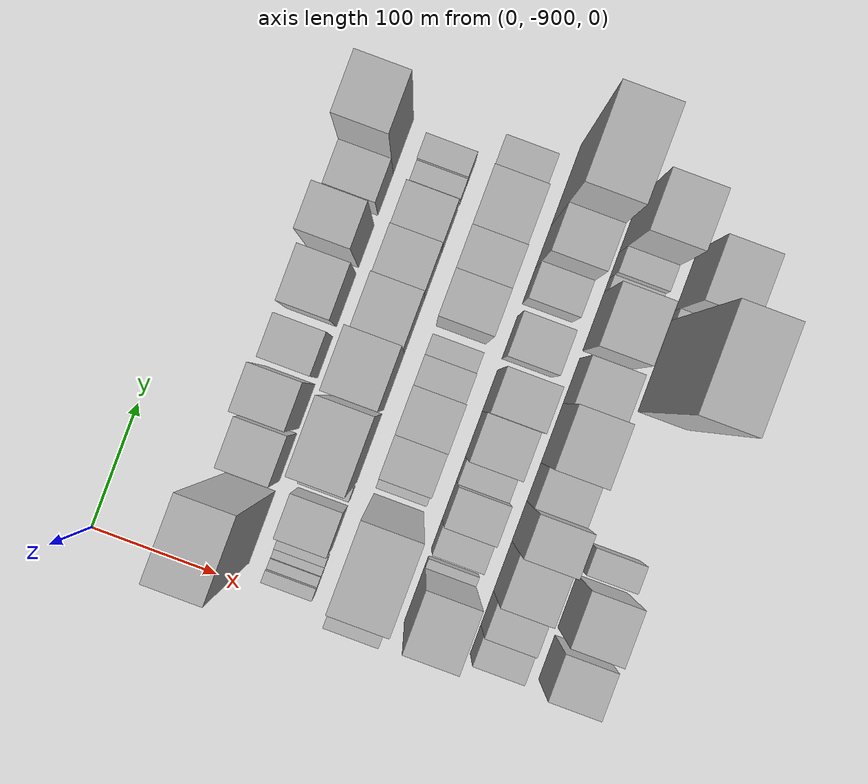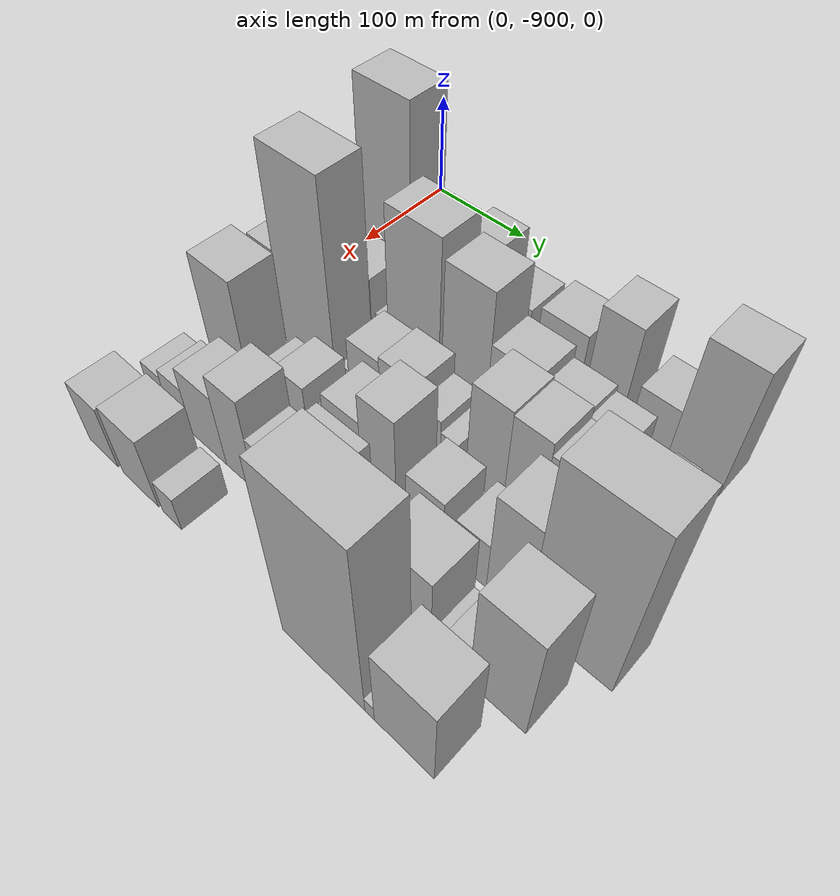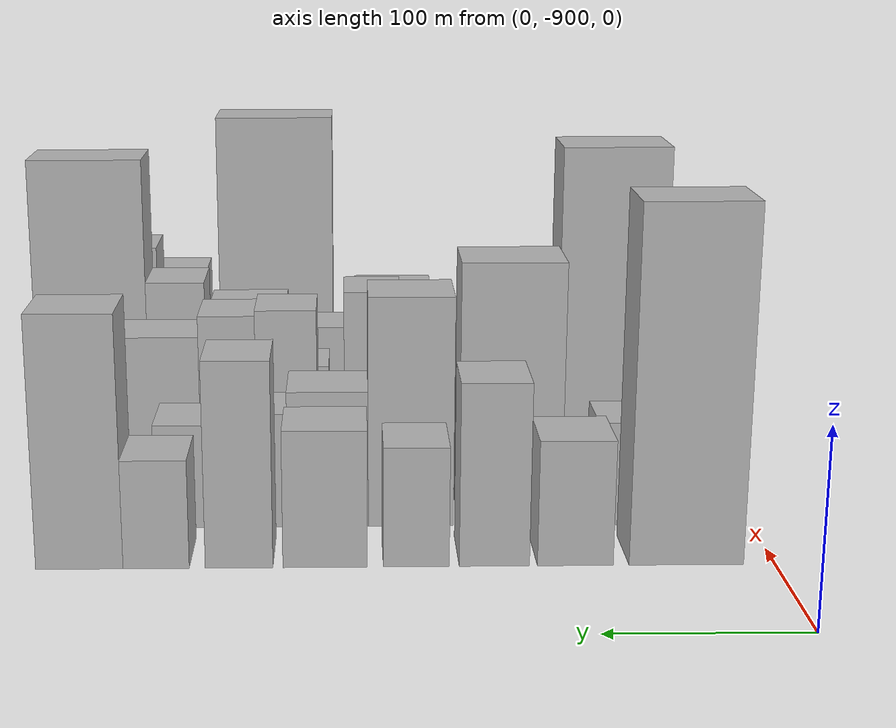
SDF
<sdf version="1.6">
 <world name="default">
  <model name="building_1">
   <static>1</static>
   <pose>100.0000 -855.0079 0 0.000000 0.000000 0.000000</pose>
   <link name="link">
    <pose>0 0 93.00 0 0 0</pose>
    <collision name="collision"><geometry><box><size>40.0000 57.9842 186.0000</size></box></geometry></collision>
    <visual name="visual">
     <cast_shadows>0</cast_shadows>
     <geometry><box><size>40.0000 57.9842 186.0000</size></box></geometry>
     <material>
      <script>
       <uri>model://HANNAS_wall/materials/scripts</uri>
       <uri>model://HANNAS_wall/materials/textures</uri>
       <name>vrc/HANNAS_wall</name>
      </script>
     </material>
    </visual>
   </link>
  </model>
  <model name="building_2">
   <static>1</static>
   <pose>100.0000 -798.8635 0 0.000000 0.000000 0.000000</pose>
   <link name="link">
    <pose>0 0 33.00 0 0 0</pose>
    <collision name="collision"><geometry><box><size>40.0000 38.3047 66.0000</size></box></geometry></collision>
    <visual name="visual">
     <cast_shadows>0</cast_shadows>
     <geometry><box><size>40.0000 38.3047 66.0000</size></box></geometry>
     <material>
      <script>
       <uri>model://HANNAS_wall/materials/scripts</uri>
       <uri>model://HANNAS_wall/materials/textures</uri>
       <name>vrc/HANNAS_wall</name>
      </script>
     </material>
    </visual>
   </link>
  </model>
  <model name="building_3">
   <static>1</static>
   <pose>100.0000 -757.9842 0 0.000000 0.000000 0.000000</pose>
   <link name="link">
    <pose>0 0 48.00 0 0 0</pose>
    <collision name="collision"><geometry><box><size>40.0000 35.4537 96.0000</size></box></geometry></collision>
    <visual name="visual">
     <cast_shadows>0</cast_shadows>
     <geometry><box><size>40.0000 35.4537 96.0000</size></box></geometry>
     <material>
      <script>
       <uri>model://HANNAS_wall/materials/scripts</uri>
       <uri>model://HANNAS_wall/materials/textures</uri>
       <name>vrc/HANNAS_wall</name>
      </script>
     </material>
    </visual>
   </link>
  </model>
  <model name="building_4">
   <static>1</static>
   <pose>100.0000 -718.6537 0 0.000000 0.000000 0.000000</pose>
   <link name="link">
    <pose>0 0 31.50 0 0 0</pose>
    <collision name="collision"><geometry><box><size>40.0000 33.2072 63.0000</size></box></geometry></collision>
    <visual name="visual">
     <cast_shadows>0</cast_shadows>
     <geometry><box><size>40.0000 33.2072 63.0000</size></box></geometry>
     <material>
      <script>
       <uri>model://HANNAS_wall/materials/scripts</uri>
       <uri>model://HANNAS_wall/materials/textures</uri>
       <name>vrc/HANNAS_wall</name>
      </script>
     </material>
    </visual>
   </link>
  </model>
  <model name="building_5">
   <static>1</static>
   <pose>100.0000 -672.7958 0 0.000000 0.000000 0.000000</pose>
   <link name="link">
    <pose>0 0 36.00 0 0 0</pose>
    <collision name="collision"><geometry><box><size>40.0000 42.5087 72.0000</size></box></geometry></collision>
    <visual name="visual">
     <cast_shadows>0</cast_shadows>
     <geometry><box><size>40.0000 42.5087 72.0000</size></box></geometry>
     <material>
      <script>
       <uri>model://HANNAS_wall/materials/scripts</uri>
       <uri>model://HANNAS_wall/materials/textures</uri>
       <name>vrc/HANNAS_wall</name>
      </script>
     </material>
    </visual>
   </link>
  </model>
  <model name="building_6">
   <static>1</static>
   <pose>100.0000 -629.5674 0 0.000000 0.000000 0.000000</pose>
   <link name="link">
    <pose>0 0 54.00 0 0 0</pose>
    <collision name="collision"><geometry><box><size>40.0000 33.9480 108.0000</size></box></geometry></collision>
    <visual name="visual">
     <cast_shadows>0</cast_shadows>
     <geometry><box><size>40.0000 33.9480 108.0000</size></box></geometry>
     <material>
      <script>
       <uri>model://HANNAS_wall/materials/scripts</uri>
       <uri>model://HANNAS_wall/materials/textures</uri>
       <name>vrc/HANNAS_wall</name>
      </script>
     </material>
    </visual>
   </link>
  </model>
  <model name="building_7">
   <static>1</static>
   <pose>100.0000 -588.0046 0 0.000000 0.000000 0.000000</pose>
   <link name="link">
    <pose>0 0 28.50 0 0 0</pose>
    <collision name="collision"><geometry><box><size>40.0000 33.1776 57.0000</size></box></geometry></collision>
    <visual name="visual">
     <cast_shadows>0</cast_shadows>
     <geometry><box><size>40.0000 33.1776 57.0000</size></box></geometry>
     <material>
      <script>
       <uri>model://HANNAS_wall/materials/scripts</uri>
       <uri>model://HANNAS_wall/materials/textures</uri>
       <name>vrc/HANNAS_wall</name>
      </script>
     </material>
    </visual>
   </link>
  </model>
  <model name="building_8">
   <static>1</static>
   <pose>100.0000 -549.5656 0 0.000000 0.000000 0.000000</pose>
   <link name="link">
    <pose>0 0 66.00 0 0 0</pose>
    <collision name="collision"><geometry><box><size>40.0000 43.7004 132.0000</size></box></geometry></collision>
    <visual name="visual">
     <cast_shadows>0</cast_shadows>
     <geometry><box><size>40.0000 43.7004 132.0000</size></box></geometry>
     <material>
      <script>
       <uri>model://HANNAS_wall/materials/scripts</uri>
       <uri>model://HANNAS_wall/materials/textures</uri>
       <name>vrc/HANNAS_wall</name>
      </script>
     </material>
    </visual>
   </link>
  </model>
  <model name="building_48">
   <static>1</static>
   <pose>155.0000 -885.1089 0 0.000000 0.000000 0.000000</pose>
   <link name="link">
    <pose>0 0 12.00 0 0 0</pose>
    <collision name="collision"><geometry><box><size>40.0000 9.7822 24.0000</size></box></geometry></collision>
    <visual name="visual">
     <cast_shadows>0</cast_shadows>
     <geometry><box><size>40.0000 9.7822 24.0000</size></box></geometry>
     <material>
      <script>
       <uri>model://HANNAS_wall/materials/scripts</uri>
       <uri>model://HANNAS_wall/materials/textures</uri>
       <name>vrc/HANNAS_wall</name>
      </script>
     </material>
    </visual>
   </link>
  </model>
  <model name="building_49">
   <static>1</static>
   <pose>155.0000 -876.0844 0 0.000000 0.000000 0.000000</pose>
   <link name="link">
    <pose>0 0 9.00 0 0 0</pose>
    <collision name="collision"><geometry><box><size>40.0000 8.2669 18.0000</size></box></geometry></collision>
    <visual name="visual">
     <cast_shadows>0</cast_shadows>
     <geometry><box><size>40.0000 8.2669 18.0000</size></box></geometry>
     <material>
      <script>
       <uri>model://HANNAS_wall/materials/scripts</uri>
       <uri>model://HANNAS_wall/materials/textures</uri>
       <name>vrc/HANNAS_wall</name>
      </script>
     </material>
    </visual>
   </link>
  </model>
  <model name="building_50">
   <static>1</static>
   <pose>155.0000 -868.2779 0 0.000000 0.000000 0.000000</pose>
   <link name="link">
    <pose>0 0 7.50 0 0 0</pose>
    <collision name="collision"><geometry><box><size>40.0000 7.3459 15.0000</size></box></geometry></collision>
    <visual name="visual">
     <cast_shadows>0</cast_shadows>
     <geometry><box><size>40.0000 7.3459 15.0000</size></box></geometry>
     <material>
      <script>
       <uri>model://HANNAS_wall/materials/scripts</uri>
       <uri>model://HANNAS_wall/materials/textures</uri>
       <name>vrc/HANNAS_wall</name>
      </script>
     </material>
    </visual>
   </link>
  </model>
  <model name="building_51">
   <static>1</static>
   <pose>155.0000 -860.5653 0 0.000000 0.000000 0.000000</pose>
   <link name="link">
    <pose>0 0 9.00 0 0 0</pose>
    <collision name="collision"><geometry><box><size>40.0000 8.0793 18.0000</size></box></geometry></collision>
    <visual name="visual">
     <cast_shadows>0</cast_shadows>
     <geometry><box><size>40.0000 8.0793 18.0000</size></box></geometry>
     <material>
      <script>
       <uri>model://HANNAS_wall/materials/scripts</uri>
       <uri>model://HANNAS_wall/materials/textures</uri>
       <name>vrc/HANNAS_wall</name>
      </script>
     </material>
    </visual>
   </link>
  </model>
  <model name="building_52">
   <static>1</static>
   <pose>155.0000 -834.4599 0 0.000000 0.000000 0.000000</pose>
   <link name="link">
    <pose>0 0 28.50 0 0 0</pose>
    <collision name="collision"><geometry><box><size>40.0000 34.1317 57.0000</size></box></geometry></collision>
    <visual name="visual">
     <cast_shadows>0</cast_shadows>
     <geometry><box><size>40.0000 34.1317 57.0000</size></box></geometry>
     <material>
      <script>
       <uri>model://HANNAS_wall/materials/scripts</uri>
       <uri>model://HANNAS_wall/materials/textures</uri>
       <name>vrc/HANNAS_wall</name>
      </script>
     </material>
    </visual>
   </link>
  </model>
  <model name="building_53">
   <static>1</static>
   <pose>155.0000 -806.9582 0 0.000000 0.000000 0.000000</pose>
   <link name="link">
    <pose>0 0 12.00 0 0 0</pose>
    <collision name="collision"><geometry><box><size>40.0000 10.8717 24.0000</size></box></geometry></collision>
    <visual name="visual">
     <cast_shadows>0</cast_shadows>
     <geometry><box><size>40.0000 10.8717 24.0000</size></box></geometry>
     <material>
      <script>
       <uri>model://HANNAS_wall/materials/scripts</uri>
       <uri>model://HANNAS_wall/materials/textures</uri>
       <name>vrc/HANNAS_wall</name>
      </script>
     </material>
    </visual>
   </link>
  </model>
  <model name="building_54">
   <static>1</static>
   <pose>155.0000 -771.0704 0 0.000000 0.000000 0.000000</pose>
   <link name="link">
    <pose>0 0 72.00 0 0 0</pose>
    <collision name="collision"><geometry><box><size>40.0000 54.9039 144.0000</size></box></geometry></collision>
    <visual name="visual">
     <cast_shadows>0</cast_shadows>
     <geometry><box><size>40.0000 54.9039 144.0000</size></box></geometry>
     <material>
      <script>
       <uri>model://HANNAS_wall/materials/scripts</uri>
       <uri>model://HANNAS_wall/materials/textures</uri>
       <name>vrc/HANNAS_wall</name>
      </script>
     </material>
    </visual>
   </link>
  </model>
  <model name="building_55">
   <static>1</static>
   <pose>155.0000 -717.8754 0 0.000000 0.000000 0.000000</pose>
   <link name="link">
    <pose>0 0 63.00 0 0 0</pose>
    <collision name="collision"><geometry><box><size>40.0000 45.4861 126.0000</size></box></geometry></collision>
    <visual name="visual">
     <cast_shadows>0</cast_shadows>
     <geometry><box><size>40.0000 45.4861 126.0000</size></box></geometry>
     <material>
      <script>
       <uri>model://HANNAS_wall/materials/scripts</uri>
       <uri>model://HANNAS_wall/materials/textures</uri>
       <name>vrc/HANNAS_wall</name>
      </script>
     </material>
    </visual>
   </link>
  </model>
  <model name="building_56">
   <static>1</static>
   <pose>155.0000 -673.6505 0 0.000000 0.000000 0.000000</pose>
   <link name="link">
    <pose>0 0 37.50 0 0 0</pose>
    <collision name="collision"><geometry><box><size>40.0000 42.9636 75.0000</size></box></geometry></collision>
    <visual name="visual">
     <cast_shadows>0</cast_shadows>
     <geometry><box><size>40.0000 42.9636 75.0000</size></box></geometry>
     <material>
      <script>
       <uri>model://HANNAS_wall/materials/scripts</uri>
       <uri>model://HANNAS_wall/materials/textures</uri>
       <name>vrc/HANNAS_wall</name>
      </script>
     </material>
    </visual>
   </link>
  </model>
  <model name="building_57">
   <static>1</static>
   <pose>155.0000 -633.5452 0 0.000000 0.000000 0.000000</pose>
   <link name="link">
    <pose>0 0 31.50 0 0 0</pose>
    <collision name="collision"><geometry><box><size>40.0000 37.2471 63.0000</size></box></geometry></collision>
    <visual name="visual">
     <cast_shadows>0</cast_shadows>
     <geometry><box><size>40.0000 37.2471 63.0000</size></box></geometry>
     <material>
      <script>
       <uri>model://HANNAS_wall/materials/scripts</uri>
       <uri>model://HANNAS_wall/materials/textures</uri>
       <name>vrc/HANNAS_wall</name>
      </script>
     </material>
    </visual>
   </link>
  </model>
  <model name="building_58">
   <static>1</static>
   <pose>155.0000 -598.1725 0 0.000000 0.000000 0.000000</pose>
   <link name="link">
    <pose>0 0 28.50 0 0 0</pose>
    <collision name="collision"><geometry><box><size>40.0000 33.4984 57.0000</size></box></geometry></collision>
    <visual name="visual">
     <cast_shadows>0</cast_shadows>
     <geometry><box><size>40.0000 33.4984 57.0000</size></box></geometry>
     <material>
      <script>
       <uri>model://HANNAS_wall/materials/scripts</uri>
       <uri>model://HANNAS_wall/materials/textures</uri>
       <name>vrc/HANNAS_wall</name>
      </script>
     </material>
    </visual>
   </link>
  </model>
  <model name="building_59">
   <static>1</static>
   <pose>155.0000 -568.5907 0 0.000000 0.000000 0.000000</pose>
   <link name="link">
    <pose>0 0 15.00 0 0 0</pose>
    <collision name="collision"><geometry><box><size>40.0000 15.6651 30.0000</size></box></geometry></collision>
    <visual name="visual">
     <cast_shadows>0</cast_shadows>
     <geometry><box><size>40.0000 15.6651 30.0000</size></box></geometry>
     <material>
      <script>
       <uri>model://HANNAS_wall/materials/scripts</uri>
       <uri>model://HANNAS_wall/materials/textures</uri>
       <name>vrc/HANNAS_wall</name>
      </script>
     </material>
    </visual>
   </link>
  </model>
  <model name="building_60">
   <static>1</static>
   <pose>155.0000 -550.9416 0 0.000000 0.000000 0.000000</pose>
   <link name="link">
    <pose>0 0 18.00 0 0 0</pose>
    <collision name="collision"><geometry><box><size>40.0000 19.6332 36.0000</size></box></geometry></collision>
    <visual name="visual">
     <cast_shadows>0</cast_shadows>
     <geometry><box><size>40.0000 19.6332 36.0000</size></box></geometry>
     <material>
      <script>
       <uri>model://HANNAS_wall/materials/scripts</uri>
       <uri>model://HANNAS_wall/materials/textures</uri>
       <name>vrc/HANNAS_wall</name>
      </script>
     </material>
    </visual>
   </link>
  </model>
  <model name="building_99">
   <static>1</static>
   <pose>210.0000 -875.5840 0 0.000000 0.000000 0.000000</pose>
   <link name="link">
    <pose>0 0 48.00 0 0 0</pose>
    <collision name="collision"><geometry><box><size>40.0000 28.8320 96.0000</size></box></geometry></collision>
    <visual name="visual">
     <cast_shadows>0</cast_shadows>
     <geometry><box><size>40.0000 28.8320 96.0000</size></box></geometry>
     <material>
      <script>
       <uri>model://HANNAS_wall/materials/scripts</uri>
       <uri>model://HANNAS_wall/materials/textures</uri>
       <name>vrc/HANNAS_wall</name>
      </script>
     </material>
    </visual>
   </link>
  </model>
  <model name="building_100">
   <static>1</static>
   <pose>210.0000 -831.4779 0 0.000000 0.000000 0.000000</pose>
   <link name="link">
    <pose>0 0 97.50 0 0 0</pose>
    <collision name="collision"><geometry><box><size>40.0000 59.3801 195.0000</size></box></geometry></collision>
    <visual name="visual">
     <cast_shadows>0</cast_shadows>
     <geometry><box><size>40.0000 59.3801 195.0000</size></box></geometry>
     <material>
      <script>
       <uri>model://HANNAS_wall/materials/scripts</uri>
       <uri>model://HANNAS_wall/materials/textures</uri>
       <name>vrc/HANNAS_wall</name>
      </script>
     </material>
    </visual>
   </link>
  </model>
  <model name="building_101">
   <static>1</static>
   <pose>210.0000 -790.9703 0 0.000000 0.000000 0.000000</pose>
   <link name="link">
    <pose>0 0 10.50 0 0 0</pose>
    <collision name="collision"><geometry><box><size>40.0000 9.6350 21.0000</size></box></geometry></collision>
    <visual name="visual">
     <cast_shadows>0</cast_shadows>
     <geometry><box><size>40.0000 9.6350 21.0000</size></box></geometry>
     <material>
      <script>
       <uri>model://HANNAS_wall/materials/scripts</uri>
       <uri>model://HANNAS_wall/materials/textures</uri>
       <name>vrc/HANNAS_wall</name>
      </script>
     </material>
    </visual>
   </link>
  </model>
  <model name="building_102">
   <static>1</static>
   <pose>210.0000 -769.4218 0 0.000000 0.000000 0.000000</pose>
   <link name="link">
    <pose>0 0 28.50 0 0 0</pose>
    <collision name="collision"><geometry><box><size>40.0000 33.4621 57.0000</size></box></geometry></collision>
    <visual name="visual">
     <cast_shadows>0</cast_shadows>
     <geometry><box><size>40.0000 33.4621 57.0000</size></box></geometry>
     <material>
      <script>
       <uri>model://HANNAS_wall/materials/scripts</uri>
       <uri>model://HANNAS_wall/materials/textures</uri>
       <name>vrc/HANNAS_wall</name>
      </script>
     </material>
    </visual>
   </link>
  </model>
  <model name="building_103">
   <static>1</static>
   <pose>210.0000 -734.0841 0 0.000000 0.000000 0.000000</pose>
   <link name="link">
    <pose>0 0 31.50 0 0 0</pose>
    <collision name="collision"><geometry><box><size>40.0000 37.2132 63.0000</size></box></geometry></collision>
    <visual name="visual">
     <cast_shadows>0</cast_shadows>
     <geometry><box><size>40.0000 37.2132 63.0000</size></box></geometry>
     <material>
      <script>
       <uri>model://HANNAS_wall/materials/scripts</uri>
       <uri>model://HANNAS_wall/materials/textures</uri>
       <name>vrc/HANNAS_wall</name>
      </script>
     </material>
    </visual>
   </link>
  </model>
  <model name="building_104">
   <static>1</static>
   <pose>210.0000 -703.6359 0 0.000000 0.000000 0.000000</pose>
   <link name="link">
    <pose>0 0 21.00 0 0 0</pose>
    <collision name="collision"><geometry><box><size>40.0000 23.6832 42.0000</size></box></geometry></collision>
    <visual name="visual">
     <cast_shadows>0</cast_shadows>
     <geometry><box><size>40.0000 23.6832 42.0000</size></box></geometry>
     <material>
      <script>
       <uri>model://HANNAS_wall/materials/scripts</uri>
       <uri>model://HANNAS_wall/materials/textures</uri>
       <name>vrc/HANNAS_wall</name>
      </script>
     </material>
    </visual>
   </link>
  </model>
  <model name="building_105">
   <static>1</static>
   <pose>210.0000 -683.5323 0 0.000000 0.000000 0.000000</pose>
   <link name="link">
    <pose>0 0 15.00 0 0 0</pose>
    <collision name="collision"><geometry><box><size>40.0000 16.5241 30.0000</size></box></geometry></collision>
    <visual name="visual">
     <cast_shadows>0</cast_shadows>
     <geometry><box><size>40.0000 16.5241 30.0000</size></box></geometry>
     <material>
      <script>
       <uri>model://HANNAS_wall/materials/scripts</uri>
       <uri>model://HANNAS_wall/materials/textures</uri>
       <name>vrc/HANNAS_wall</name>
      </script>
     </material>
    </visual>
   </link>
  </model>
  <model name="building_106">
   <static>1</static>
   <pose>210.0000 -650.1857 0 0.000000 0.000000 0.000000</pose>
   <link name="link">
    <pose>0 0 52.50 0 0 0</pose>
    <collision name="collision"><geometry><box><size>40.0000 34.1690 105.0000</size></box></geometry></collision>
    <visual name="visual">
     <cast_shadows>0</cast_shadows>
     <geometry><box><size>40.0000 34.1690 105.0000</size></box></geometry>
     <material>
      <script>
       <uri>model://HANNAS_wall/materials/scripts</uri>
       <uri>model://HANNAS_wall/materials/textures</uri>
       <name>vrc/HANNAS_wall</name>
      </script>
     </material>
    </visual>
   </link>
  </model>
  <model name="building_107">
   <static>1</static>
   <pose>210.0000 -617.4184 0 0.000000 0.000000 0.000000</pose>
   <link name="link">
    <pose>0 0 51.00 0 0 0</pose>
    <collision name="collision"><geometry><box><size>40.0000 31.3656 102.0000</size></box></geometry></collision>
    <visual name="visual">
     <cast_shadows>0</cast_shadows>
     <geometry><box><size>40.0000 31.3656 102.0000</size></box></geometry>
     <material>
      <script>
       <uri>model://HANNAS_wall/materials/scripts</uri>
       <uri>model://HANNAS_wall/materials/textures</uri>
       <name>vrc/HANNAS_wall</name>
      </script>
     </material>
    </visual>
   </link>
  </model>
  <model name="building_108">
   <static>1</static>
   <pose>210.0000 -579.0152 0 0.000000 0.000000 0.000000</pose>
   <link name="link">
    <pose>0 0 45.00 0 0 0</pose>
    <collision name="collision"><geometry><box><size>40.0000 45.4407 90.0000</size></box></geometry></collision>
    <visual name="visual">
     <cast_shadows>0</cast_shadows>
     <geometry><box><size>40.0000 45.4407 90.0000</size></box></geometry>
     <material>
      <script>
       <uri>model://HANNAS_wall/materials/scripts</uri>
       <uri>model://HANNAS_wall/materials/textures</uri>
       <name>vrc/HANNAS_wall</name>
      </script>
     </material>
    </visual>
   </link>
  </model>
  <model name="building_109">
   <static>1</static>
   <pose>210.0000 -541.6508 0 0.000000 0.000000 0.000000</pose>
   <link name="link">
    <pose>0 0 28.50 0 0 0</pose>
    <collision name="collision"><geometry><box><size>40.0000 29.2882 57.0000</size></box></geometry></collision>
    <visual name="visual">
     <cast_shadows>0</cast_shadows>
     <geometry><box><size>40.0000 29.2882 57.0000</size></box></geometry>
     <material>
      <script>
       <uri>model://HANNAS_wall/materials/scripts</uri>
       <uri>model://HANNAS_wall/materials/textures</uri>
       <name>vrc/HANNAS_wall</name>
      </script>
     </material>
    </visual>
   </link>
  </model>
  <model name="building_153">
   <static>1</static>
   <pose>265.0000 -861.3741 0 0.000000 0.000000 0.000000</pose>
   <link name="link">
    <pose>0 0 58.50 0 0 0</pose>
    <collision name="collision"><geometry><box><size>40.0000 45.2519 117.0000</size></box></geometry></collision>
    <visual name="visual">
     <cast_shadows>0</cast_shadows>
     <geometry><box><size>40.0000 45.2519 117.0000</size></box></geometry>
     <material>
      <script>
       <uri>model://HANNAS_wall/materials/scripts</uri>
       <uri>model://HANNAS_wall/materials/textures</uri>
       <name>vrc/HANNAS_wall</name>
      </script>
     </material>
    </visual>
   </link>
  </model>
  <model name="building_154">
   <static>1</static>
   <pose>265.0000 -835.0687 0 0.000000 0.000000 0.000000</pose>
   <link name="link">
    <pose>0 0 9.00 0 0 0</pose>
    <collision name="collision"><geometry><box><size>40.0000 7.3588 18.0000</size></box></geometry></collision>
    <visual name="visual">
     <cast_shadows>0</cast_shadows>
     <geometry><box><size>40.0000 7.3588 18.0000</size></box></geometry>
     <material>
      <script>
       <uri>model://HANNAS_wall/materials/scripts</uri>
       <uri>model://HANNAS_wall/materials/textures</uri>
       <name>vrc/HANNAS_wall</name>
      </script>
     </material>
    </visual>
   </link>
  </model>
  <model name="building_155">
   <static>1</static>
   <pose>265.0000 -813.7408 0 0.000000 0.000000 0.000000</pose>
   <link name="link">
    <pose>0 0 21.00 0 0 0</pose>
    <collision name="collision"><geometry><box><size>40.0000 23.2970 42.0000</size></box></geometry></collision>
    <visual name="visual">
     <cast_shadows>0</cast_shadows>
     <geometry><box><size>40.0000 23.2970 42.0000</size></box></geometry>
     <material>
      <script>
       <uri>model://HANNAS_wall/materials/scripts</uri>
       <uri>model://HANNAS_wall/materials/textures</uri>
       <name>vrc/HANNAS_wall</name>
      </script>
     </material>
    </visual>
   </link>
  </model>
  <model name="building_156">
   <static>1</static>
   <pose>265.0000 -786.8566 0 0.000000 0.000000 0.000000</pose>
   <link name="link">
    <pose>0 0 30.00 0 0 0</pose>
    <collision name="collision"><geometry><box><size>40.0000 30.4714 60.0000</size></box></geometry></collision>
    <visual name="visual">
     <cast_shadows>0</cast_shadows>
     <geometry><box><size>40.0000 30.4714 60.0000</size></box></geometry>
     <material>
      <script>
       <uri>model://HANNAS_wall/materials/scripts</uri>
       <uri>model://HANNAS_wall/materials/textures</uri>
       <name>vrc/HANNAS_wall</name>
      </script>
     </material>
    </visual>
   </link>
  </model>
  <model name="building_157">
   <static>1</static>
   <pose>265.0000 -761.8652 0 0.000000 0.000000 0.000000</pose>
   <link name="link">
    <pose>0 0 16.50 0 0 0</pose>
    <collision name="collision"><geometry><box><size>40.0000 19.5115 33.0000</size></box></geometry></collision>
    <visual name="visual">
     <cast_shadows>0</cast_shadows>
     <geometry><box><size>40.0000 19.5115 33.0000</size></box></geometry>
     <material>
      <script>
       <uri>model://HANNAS_wall/materials/scripts</uri>
       <uri>model://HANNAS_wall/materials/textures</uri>
       <name>vrc/HANNAS_wall</name>
      </script>
     </material>
    </visual>
   </link>
  </model>
  <model name="building_158">
   <static>1</static>
   <pose>265.0000 -733.8748 0 0.000000 0.000000 0.000000</pose>
   <link name="link">
    <pose>0 0 36.00 0 0 0</pose>
    <collision name="collision"><geometry><box><size>40.0000 36.4691 72.0000</size></box></geometry></collision>
    <visual name="visual">
     <cast_shadows>0</cast_shadows>
     <geometry><box><size>40.0000 36.4691 72.0000</size></box></geometry>
     <material>
      <script>
       <uri>model://HANNAS_wall/materials/scripts</uri>
       <uri>model://HANNAS_wall/materials/textures</uri>
       <name>vrc/HANNAS_wall</name>
      </script>
     </material>
    </visual>
   </link>
  </model>
  <model name="building_159">
   <static>1</static>
   <pose>265.0000 -698.9834 0 0.000000 0.000000 0.000000</pose>
   <link name="link">
    <pose>0 0 51.00 0 0 0</pose>
    <collision name="collision"><geometry><box><size>40.0000 33.3136 102.0000</size></box></geometry></collision>
    <visual name="visual">
     <cast_shadows>0</cast_shadows>
     <geometry><box><size>40.0000 33.3136 102.0000</size></box></geometry>
     <material>
      <script>
       <uri>model://HANNAS_wall/materials/scripts</uri>
       <uri>model://HANNAS_wall/materials/textures</uri>
       <name>vrc/HANNAS_wall</name>
      </script>
     </material>
    </visual>
   </link>
  </model>
  <model name="building_160">
   <static>1</static>
   <pose>265.0000 -656.2502 0 0.000000 0.000000 0.000000</pose>
   <link name="link">
    <pose>0 0 28.50 0 0 0</pose>
    <collision name="collision"><geometry><box><size>40.0000 34.1528 57.0000</size></box></geometry></collision>
    <visual name="visual">
     <cast_shadows>0</cast_shadows>
     <geometry><box><size>40.0000 34.1528 57.0000</size></box></geometry>
     <material>
      <script>
       <uri>model://HANNAS_wall/materials/scripts</uri>
       <uri>model://HANNAS_wall/materials/textures</uri>
       <name>vrc/HANNAS_wall</name>
      </script>
     </material>
    </visual>
   </link>
  </model>
  <model name="building_161">
   <static>1</static>
   <pose>265.0000 -615.1241 0 0.000000 0.000000 0.000000</pose>
   <link name="link">
    <pose>0 0 25.50 0 0 0</pose>
    <collision name="collision"><geometry><box><size>40.0000 28.0996 51.0000</size></box></geometry></collision>
    <visual name="visual">
     <cast_shadows>0</cast_shadows>
     <geometry><box><size>40.0000 28.0996 51.0000</size></box></geometry>
     <material>
      <script>
       <uri>model://HANNAS_wall/materials/scripts</uri>
       <uri>model://HANNAS_wall/materials/textures</uri>
       <name>vrc/HANNAS_wall</name>
      </script>
     </material>
    </visual>
   </link>
  </model>
  <model name="building_162">
   <static>1</static>
   <pose>265.0000 -584.0145 0 0.000000 0.000000 0.000000</pose>
   <link name="link">
    <pose>0 0 54.00 0 0 0</pose>
    <collision name="collision"><geometry><box><size>40.0000 34.1195 108.0000</size></box></geometry></collision>
    <visual name="visual">
     <cast_shadows>0</cast_shadows>
     <geometry><box><size>40.0000 34.1195 108.0000</size></box></geometry>
     <material>
      <script>
       <uri>model://HANNAS_wall/materials/scripts</uri>
       <uri>model://HANNAS_wall/materials/textures</uri>
       <name>vrc/HANNAS_wall</name>
      </script>
     </material>
    </visual>
   </link>
  </model>
  <model name="building_163">
   <static>1</static>
   <pose>265.0000 -534.2491 0 0.000000 0.000000 0.000000</pose>
   <link name="link">
    <pose>0 0 90.00 0 0 0</pose>
    <collision name="collision"><geometry><box><size>40.0000 65.4112 180.0000</size></box></geometry></collision>
    <visual name="visual">
     <cast_shadows>0</cast_shadows>
     <geometry><box><size>40.0000 65.4112 180.0000</size></box></geometry>
     <material>
      <script>
       <uri>model://HANNAS_wall/materials/scripts</uri>
       <uri>model://HANNAS_wall/materials/textures</uri>
       <name>vrc/HANNAS_wall</name>
      </script>
     </material>
    </visual>
   </link>
  </model>
  <model name="building_208">
   <static>1</static>
   <pose>320.0000 -878.3616 0 0.000000 0.000000 0.000000</pose>
   <link name="link">
    <pose>0 0 21.00 0 0 0</pose>
    <collision name="collision"><geometry><box><size>40.0000 23.2768 42.0000</size></box></geometry></collision>
    <visual name="visual">
     <cast_shadows>0</cast_shadows>
     <geometry><box><size>40.0000 23.2768 42.0000</size></box></geometry>
     <material>
      <script>
       <uri>model://HANNAS_wall/materials/scripts</uri>
       <uri>model://HANNAS_wall/materials/textures</uri>
       <name>vrc/HANNAS_wall</name>
      </script>
     </material>
    </visual>
   </link>
  </model>
  <model name="building_209">
   <static>1</static>
   <pose>320.0000 -852.9241 0 0.000000 0.000000 0.000000</pose>
   <link name="link">
    <pose>0 0 25.50 0 0 0</pose>
    <collision name="collision"><geometry><box><size>40.0000 27.5982 51.0000</size></box></geometry></collision>
    <visual name="visual">
     <cast_shadows>0</cast_shadows>
     <geometry><box><size>40.0000 27.5982 51.0000</size></box></geometry>
     <material>
      <script>
       <uri>model://HANNAS_wall/materials/scripts</uri>
       <uri>model://HANNAS_wall/materials/textures</uri>
       <name>vrc/HANNAS_wall</name>
      </script>
     </material>
    </visual>
   </link>
  </model>
  <model name="building_210">
   <static>1</static>
   <pose>320.0000 -819.2784 0 0.000000 0.000000 0.000000</pose>
   <link name="link">
    <pose>0 0 37.50 0 0 0</pose>
    <collision name="collision"><geometry><box><size>40.0000 39.6931 75.0000</size></box></geometry></collision>
    <visual name="visual">
     <cast_shadows>0</cast_shadows>
     <geometry><box><size>40.0000 39.6931 75.0000</size></box></geometry>
     <material>
      <script>
       <uri>model://HANNAS_wall/materials/scripts</uri>
       <uri>model://HANNAS_wall/materials/textures</uri>
       <name>vrc/HANNAS_wall</name>
      </script>
     </material>
    </visual>
   </link>
  </model>
  <model name="building_211">
   <static>1</static>
   <pose>320.0000 -783.3501 0 0.000000 0.000000 0.000000</pose>
   <link name="link">
    <pose>0 0 49.50 0 0 0</pose>
    <collision name="collision"><geometry><box><size>40.0000 32.1634 99.0000</size></box></geometry></collision>
    <visual name="visual">
     <cast_shadows>0</cast_shadows>
     <geometry><box><size>40.0000 32.1634 99.0000</size></box></geometry>
     <material>
      <script>
       <uri>model://HANNAS_wall/materials/scripts</uri>
       <uri>model://HANNAS_wall/materials/textures</uri>
       <name>vrc/HANNAS_wall</name>
      </script>
     </material>
    </visual>
   </link>
  </model>
  <model name="building_212">
   <static>1</static>
   <pose>320.0000 -751.8166 0 0.000000 0.000000 0.000000</pose>
   <link name="link">
    <pose>0 0 30.00 0 0 0</pose>
    <collision name="collision"><geometry><box><size>40.0000 30.9037 60.0000</size></box></geometry></collision>
    <visual name="visual">
     <cast_shadows>0</cast_shadows>
     <geometry><box><size>40.0000 30.9037 60.0000</size></box></geometry>
     <material>
      <script>
       <uri>model://HANNAS_wall/materials/scripts</uri>
       <uri>model://HANNAS_wall/materials/textures</uri>
       <name>vrc/HANNAS_wall</name>
      </script>
     </material>
    </visual>
   </link>
  </model>
  <model name="building_213">
   <static>1</static>
   <pose>320.0000 -712.5816 0 0.000000 0.000000 0.000000</pose>
   <link name="link">
    <pose>0 0 45.00 0 0 0</pose>
    <collision name="collision"><geometry><box><size>40.0000 47.5662 90.0000</size></box></geometry></collision>
    <visual name="visual">
     <cast_shadows>0</cast_shadows>
     <geometry><box><size>40.0000 47.5662 90.0000</size></box></geometry>
     <material>
      <script>
       <uri>model://HANNAS_wall/materials/scripts</uri>
       <uri>model://HANNAS_wall/materials/textures</uri>
       <name>vrc/HANNAS_wall</name>
      </script>
     </material>
    </visual>
   </link>
  </model>
  <model name="building_214">
   <static>1</static>
   <pose>320.0000 -670.6475 0 0.000000 0.000000 0.000000</pose>
   <link name="link">
    <pose>0 0 33.00 0 0 0</pose>
    <collision name="collision"><geometry><box><size>40.0000 36.3021 66.0000</size></box></geometry></collision>
    <visual name="visual">
     <cast_shadows>0</cast_shadows>
     <geometry><box><size>40.0000 36.3021 66.0000</size></box></geometry>
     <material>
      <script>
       <uri>model://HANNAS_wall/materials/scripts</uri>
       <uri>model://HANNAS_wall/materials/textures</uri>
       <name>vrc/HANNAS_wall</name>
      </script>
     </material>
    </visual>
   </link>
  </model>
  <model name="building_215">
   <static>1</static>
   <pose>320.0000 -622.8354 0 0.000000 0.000000 0.000000</pose>
   <link name="link">
    <pose>0 0 40.50 0 0 0</pose>
    <collision name="collision"><geometry><box><size>40.0000 47.3221 81.0000</size></box></geometry></collision>
    <visual name="visual">
     <cast_shadows>0</cast_shadows>
     <geometry><box><size>40.0000 47.3221 81.0000</size></box></geometry>
     <material>
      <script>
       <uri>model://HANNAS_wall/materials/scripts</uri>
       <uri>model://HANNAS_wall/materials/textures</uri>
       <name>vrc/HANNAS_wall</name>
      </script>
     </material>
    </visual>
   </link>
  </model>
  <model name="building_216">
   <static>1</static>
   <pose>320.0000 -593.5559 0 0.000000 0.000000 0.000000</pose>
   <link name="link">
    <pose>0 0 12.00 0 0 0</pose>
    <collision name="collision"><geometry><box><size>40.0000 11.2368 24.0000</size></box></geometry></collision>
    <visual name="visual">
     <cast_shadows>0</cast_shadows>
     <geometry><box><size>40.0000 11.2368 24.0000</size></box></geometry>
     <material>
      <script>
       <uri>model://HANNAS_wall/materials/scripts</uri>
       <uri>model://HANNAS_wall/materials/textures</uri>
       <name>vrc/HANNAS_wall</name>
      </script>
     </material>
    </visual>
   </link>
  </model>
  <model name="building_217">
   <static>1</static>
   <pose>320.0000 -577.7798 0 0.000000 0.000000 0.000000</pose>
   <link name="link">
    <pose>0 0 19.50 0 0 0</pose>
    <collision name="collision"><geometry><box><size>40.0000 20.3152 39.0000</size></box></geometry></collision>
    <visual name="visual">
     <cast_shadows>0</cast_shadows>
     <geometry><box><size>40.0000 20.3152 39.0000</size></box></geometry>
     <material>
      <script>
       <uri>model://HANNAS_wall/materials/scripts</uri>
       <uri>model://HANNAS_wall/materials/textures</uri>
       <name>vrc/HANNAS_wall</name>
      </script>
     </material>
    </visual>
   </link>
  </model>
  <model name="building_218">
   <static>1</static>
   <pose>320.0000 -545.6528 0 0.000000 0.000000 0.000000</pose>
   <link name="link">
    <pose>0 0 58.50 0 0 0</pose>
    <collision name="collision"><geometry><box><size>40.0000 43.9388 117.0000</size></box></geometry></collision>
    <visual name="visual">
     <cast_shadows>0</cast_shadows>
     <geometry><box><size>40.0000 43.9388 117.0000</size></box></geometry>
     <material>
      <script>
       <uri>model://HANNAS_wall/materials/scripts</uri>
       <uri>model://HANNAS_wall/materials/textures</uri>
       <name>vrc/HANNAS_wall</name>
      </script>
     </material>
    </visual>
   </link>
  </model>
  <model name="building_259">
   <static>1</static>
   <pose>375.0000 -872.1876 0 0.000000 0.000000 0.000000</pose>
   <link name="link">
    <pose>0 0 33.00 0 0 0</pose>
    <collision name="collision"><geometry><box><size>40.0000 35.6247 66.0000</size></box></geometry></collision>
    <visual name="visual">
     <cast_shadows>0</cast_shadows>
     <geometry><box><size>40.0000 35.6247 66.0000</size></box></geometry>
     <material>
      <script>
       <uri>model://HANNAS_wall/materials/scripts</uri>
       <uri>model://HANNAS_wall/materials/textures</uri>
       <name>vrc/HANNAS_wall</name>
      </script>
     </material>
    </visual>
   </link>
  </model>
  <model name="building_260">
   <static>1</static>
   <pose>375.0000 -827.0582 0 0.000000 0.000000 0.000000</pose>
   <link name="link">
    <pose>0 0 37.50 0 0 0</pose>
    <collision name="collision"><geometry><box><size>40.0000 42.6342 75.0000</size></box></geometry></collision>
    <visual name="visual">
     <cast_shadows>0</cast_shadows>
     <geometry><box><size>40.0000 42.6342 75.0000</size></box></geometry>
     <material>
      <script>
       <uri>model://HANNAS_wall/materials/scripts</uri>
       <uri>model://HANNAS_wall/materials/textures</uri>
       <name>vrc/HANNAS_wall</name>
      </script>
     </material>
    </visual>
   </link>
  </model>
  <model name="building_261">
   <static>1</static>
   <pose>375.0000 -790.1392 0 0.000000 0.000000 0.000000</pose>
   <link name="link">
    <pose>0 0 18.00 0 0 0</pose>
    <collision name="collision"><geometry><box><size>40.0000 21.2038 36.0000</size></box></geometry></collision>
    <visual name="visual">
     <cast_shadows>0</cast_shadows>
     <geometry><box><size>40.0000 21.2038 36.0000</size></box></geometry>
     <material>
      <script>
       <uri>model://HANNAS_wall/materials/scripts</uri>
       <uri>model://HANNAS_wall/materials/textures</uri>
       <name>vrc/HANNAS_wall</name>
      </script>
     </material>
    </visual>
   </link>
  </model>
  <model name="building_262">
   <static>1</static>
   <pose>375.0000 -638.1969 0 0.000000 0.000000 0.000000</pose>
   <link name="link">
    <pose>0 0 94.50 0 0 0</pose>
    <collision name="collision"><geometry><box><size>40.0000 73.5602 189.0000</size></box></geometry></collision>
    <visual name="visual">
     <cast_shadows>0</cast_shadows>
     <geometry><box><size>40.0000 73.5602 189.0000</size></box></geometry>
     <material>
      <script>
       <uri>model://HANNAS_wall/materials/scripts</uri>
       <uri>model://HANNAS_wall/materials/textures</uri>
       <name>vrc/HANNAS_wall</name>
      </script>
     </material>
    </visual>
   </link>
  </model>
  <model name="building_263">
   <static>1</static>
   <pose>375.0000 -597.4301 0 0.000000 0.000000 0.000000</pose>
   <link name="link">
    <pose>0 0 9.00 0 0 0</pose>
    <collision name="collision"><geometry><box><size>40.0000 7.9733 18.0000</size></box></geometry></collision>
    <visual name="visual">
     <cast_shadows>0</cast_shadows>
     <geometry><box><size>40.0000 7.9733 18.0000</size></box></geometry>
     <material>
      <script>
       <uri>model://HANNAS_wall/materials/scripts</uri>
       <uri>model://HANNAS_wall/materials/textures</uri>
       <name>vrc/HANNAS_wall</name>
      </script>
     </material>
    </visual>
   </link>
  </model>
  <model name="building_264">
   <static>1</static>
   <pose>375.0000 -569.4869 0 0.000000 0.000000 0.000000</pose>
   <link name="link">
    <pose>0 0 45.00 0 0 0</pose>
    <collision name="collision"><geometry><box><size>40.0000 47.9133 90.0000</size></box></geometry></collision>
    <visual name="visual">
     <cast_shadows>0</cast_shadows>
     <geometry><box><size>40.0000 47.9133 90.0000</size></box></geometry>
     <material>
      <script>
       <uri>model://HANNAS_wall/materials/scripts</uri>
       <uri>model://HANNAS_wall/materials/textures</uri>
       <name>vrc/HANNAS_wall</name>
      </script>
     </material>
    </visual>
   </link>
  </model>
 </world>
</sdf>
